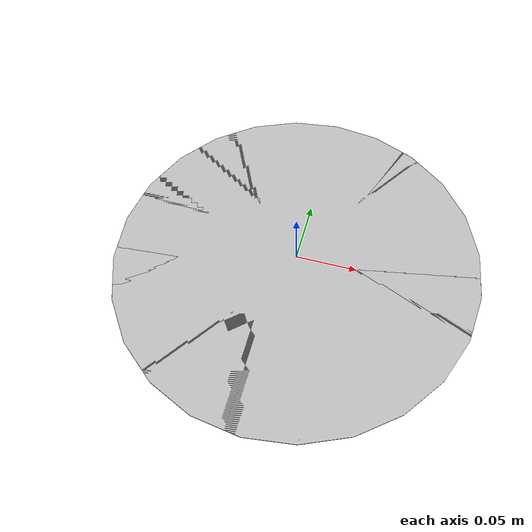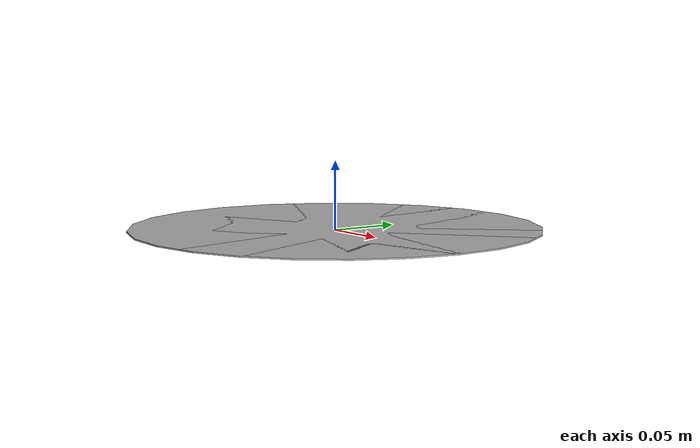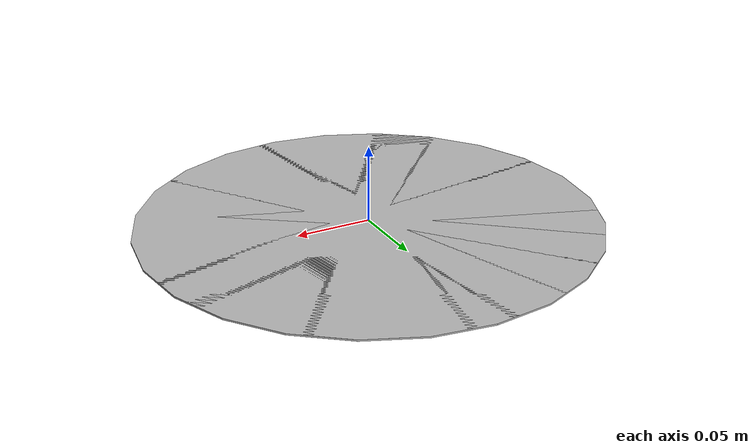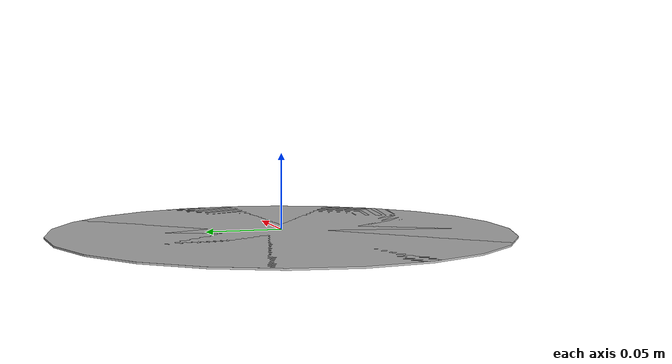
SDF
<?xml version="1.0"?>
<sdf version="1.6">
  <model name="circular_object">
    <link name="link">
   <static>true</static>
   <kinematic>1</kinematic>
      <inertial>
        <pose>0 0 0 0 0 0</pose>
        <mass>0.001</mass>
        <inertia>
          <ixx>3.7499999999999997e-06</ixx>
          <ixy>0.0</ixy>
          <ixz>0.0</ixz>
          <iyy>1.8750008333333333e-06</iyy>
          <iyz>0.0</iyz>
          <izz>1.8750008333333333e-06</izz>
        </inertia>
      </inertial>
      <visual name="front_visual">
        <pose>0.00005 0 0 0 0 0</pose>

          <!--adding the geometry of the circular object-->

          <geometry>
            <cylinder>
                <radius>0.15</radius>
                <length>0.001</length>
            </cylinder>
          </geometry>

            <material>
              <script>
              <name>color_material</name>
              </script>
              <color>
              <rgba>1 0 1 1</rgba> <!-- Red color with full opacity -->
              </color>
            </material>
      </visual>
      <!-- Hide the marker from the back -->
      <visual name="rear_visual">
        <pose>-0.00005 0 0 0 0 0</pose>
        <geometry>
            <cylinder>
                <radius>0.15</radius>
                <length>0.001</length>
            </cylinder>
        </geometry>
      </visual>
      <collision name="collision">
        <pose>0 0 0 0 0 0</pose>
        <geometry>

            <cylinder>
                <radius>0.15</radius>
                <length>0.001</length>
            </cylinder>

        </geometry>
      </collision>
    </link>
  </model>
</sdf>
